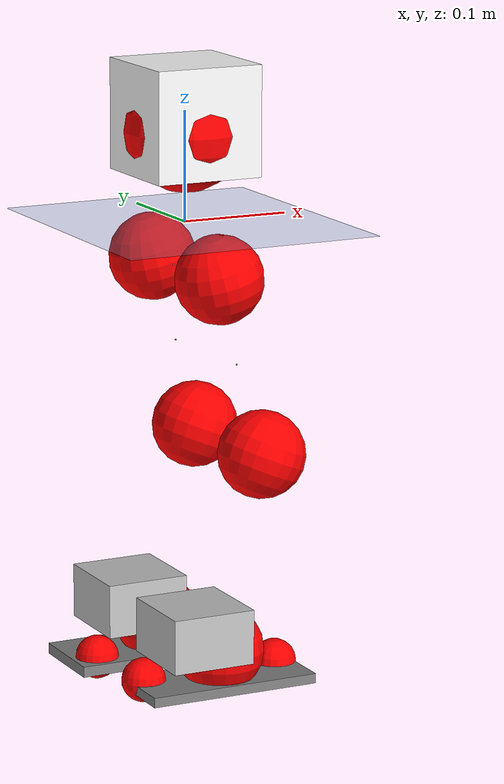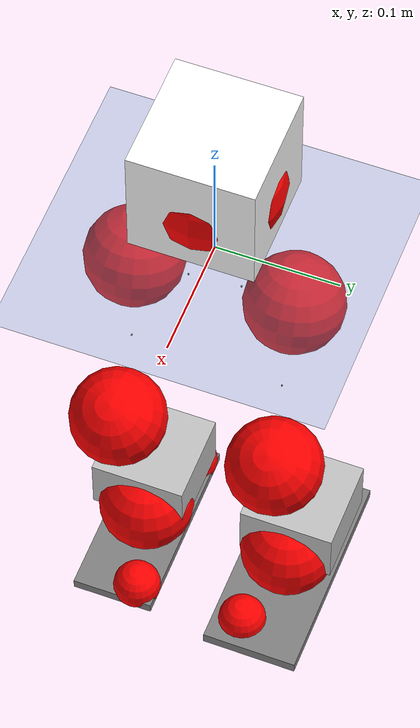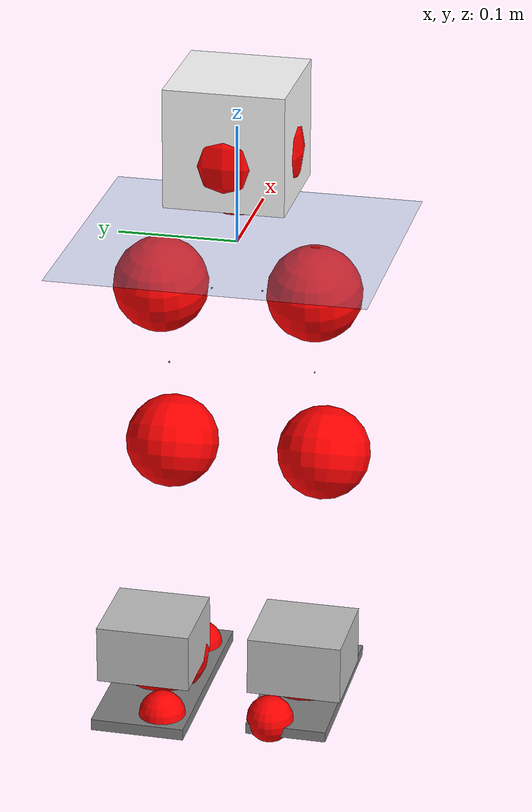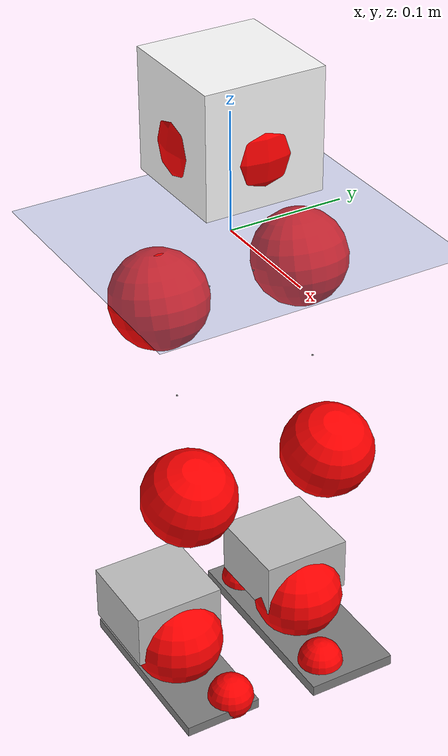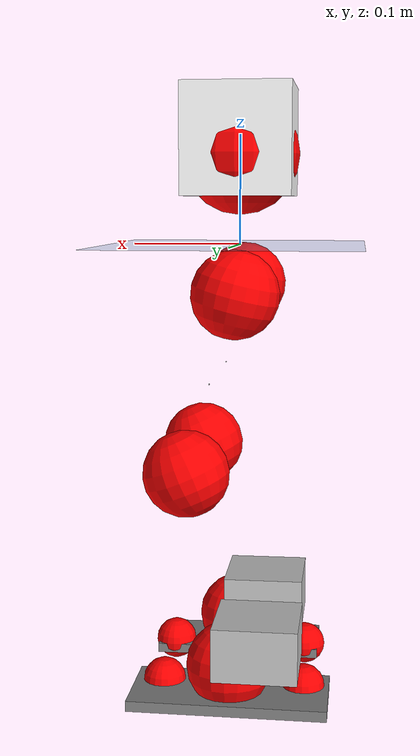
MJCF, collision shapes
<mujoco model="pi_12dof_release_v1">
  <compiler angle="radian" assetdir="assets" balanceinertia="true" inertiafromgeom="false"/>

  <option timestep="0.005" density="1.2" viscosity="2e-05"/>

  <size nkey="1"/>

  <visual>
    <quality shadowsize="8192"/>
    <map shadowclip="0.5"/>
  </visual>

  <default>
    <default class="/">
      <joint armature="0.01" damping="0.01" frictionloss="0.01"/>
      <geom contype="0" conaffinity="0" group="1" solref="-1000 -80"/>
      <site size="0.01 0.005 0.005" group="5"/>
      <general forcelimited="true" biastype="affine" gainprm="20" biasprm="0 -20 -0.5"/>
      <default class="foot">
        <geom size="0.0845 0.036 0.005" type="box" condim="6" group="4" priority="1" friction="0.9 0.2 0.2" solimp="0.015 1 0.005"/>
      </default>
      <default class="reward_collision_sphere">
        <geom group="5" rgba="1 0 0 1"/>
      </default>
    </default>
  </default>

  <asset>
    <texture type="skybox" colorspace="auto" name="//unnamed_texture_0" builtin="gradient" rgb1="0.95 0.95 0.95" rgb2="0.95 0.95 0.95" width="100" height="600"/>
    <texture type="2d" colorspace="auto" name="texplane" builtin="checker" rgb1="0.345 0.575 0.748" rgb2="0.345 0.575 0.748" markrgb="1 1 1" width="512" height="512"/>
    <material name="MatPlane" class="/" texture="texplane" texuniform="true" texrepeat="2 2" specular="0.9"/>
    <mesh name="baselink_1" class="/" file="baselink_1.STL"/>
    <mesh name="r_hip_pitch_link" class="/" file="r_hip_pitch_link.STL"/>
    <mesh name="r_hip_roll_link" class="/" file="r_hip_roll_link.STL"/>
    <mesh name="r_thigh_link" class="/" file="r_thigh_link.STL"/>
    <mesh name="r_calf_link" class="/" file="r_calf_link.STL"/>
    <mesh name="r_ankle_pitch_link" class="/" file="r_ankle_pitch_link.STL"/>
    <mesh name="r_ankle_roll_link" class="/" file="r_ankle_roll_link.STL"/>
    <mesh name="l_hip_pitch_link" class="/" file="l_hip_pitch_link.STL"/>
    <mesh name="l_hip_roll_link" class="/" file="l_hip_roll_link.STL"/>
    <mesh name="l_thigh_link" class="/" file="l_thigh_link.STL"/>
    <mesh name="l_calf_link" class="/" file="l_calf_link.STL"/>
    <mesh name="l_ankle_pitch_link" class="/" file="l_ankle_pitch_link.STL"/>
    <mesh name="l_ankle_roll_link" class="/" file="l_ankle_roll_link.STL"/>
  </asset>

  <worldbody>
    <geom name="floor" class="/" size="100 100 0.125" type="plane" group="0" material="MatPlane"/>
    <light name="toplight_shadow" class="/" pos="0 0 5" dir="0.0990148 0.0990148 -0.990148" type="directional" ambient="0.04 0.04 0.04" diffuse="0.55 0.55 0.55" specular="0.12 0.12 0.12"/>
    <light name="toplight_fill" class="/" pos="0 0 5" dir="0.0990148 0.0990148 -0.990148" type="directional" castshadow="false" ambient="0.04 0.04 0.04" diffuse="0.3 0.3 0.3" specular="0.08 0.08 0.08"/>
    <body name="trunk" pos="0.00020196 -0.000141055 -0.00283642" quat="1 2.26232e-05 5.81473e-05 -6.13122e-05">
      <inertial pos="0.00126332 0.0020315 0.0517027" quat="0.695228 0.00903817 0.00973899 0.718666" mass="2.10167" diaginertia="0.00890169 0.00300556 0.0108017"/>
      <joint name="//unnamed_joint_0" type="free"/>
      <geom name="//unnamed_geom_1" class="/" type="mesh" density="0" rgba="1 1 1 1" mesh="baselink_1"/>
      <geom name="//unnamed_geom_2" class="/" size="0.0500967 0.0500967 0.0500967" pos="0 0 0.0972585" type="box" rgba="1 1 1 1"/>
      <geom name="//unnamed_geom_3" class="reward_collision_sphere" size="0.0551063" pos="0 0 0.0851012"/>
      <site name="imu" class="/" pos="0.00553711 -0.0123952 0.00683029" size="0.0100193"/>
      <camera name="track" class="/" pos="0 -1.6186 0" quat="0.707107 0.707107 0 0" mode="trackcom"/>
      <camera name="ego_camera" class="/" pos="0.0735579 0 0.218832" quat="-0.5 -0.5 0.5 0.5"/>
      <body name="r_hip_pitch_link" pos="0.00190835 -0.0208594 -0.0397781" quat="0.992189 0.000316266 -0.124743 -6.63328e-05">
        <inertial pos="-0.00163845 -0.0441537 -0.00228258" quat="-0.0156801 0.70487 -0.0311768 0.708478" mass="0.36847" diaginertia="9.79022e-05 3.27891e-05 0.000226084"/>
        <joint name="r_hip_pitch_joint" class="/" pos="0 0 0" axis="0.00744947 -0.999972 0.000926036" stiffness="0.0120009" range="-1.72905 1.19277" armature="0.00872369" damping="0.00213772" frictionloss="0.00860625"/>
        <geom name="//unnamed_geom_4" class="/" type="mesh" density="0" rgba="0.75294 0.75294 0.75294 1" mesh="r_hip_pitch_link"/>
        <geom name="//unnamed_geom_5" class="/" size="0.000500967 0.000500967 0.000500967" type="box" rgba="0.75294 0.75294 0.75294 1"/>
        <body name="r_hip_roll_link" pos="8.75588e-05 -0.0442021 0.00228211" quat="1 -5.6967e-05 -0.000101839 4.58487e-05">
          <inertial pos="-0.00129188 0.000873726 -0.0769284" quat="0.706627 -0.0789145 -0.0805135 0.698548" mass="0.379393" diaginertia="0.00030185 9.69038e-05 0.000323915"/>
          <joint name="r_hip_roll_joint" class="/" pos="0 0 0" axis="-0.999918 0.00975043 0.00833388" range="-0.121492 0.51783" armature="0.0104259" damping="0.0186618" frictionloss="0.0112986"/>
          <geom name="//unnamed_geom_6" class="/" type="mesh" density="0" rgba="0.75294 0.75294 0.75294 1" mesh="r_hip_roll_link"/>
          <geom name="//unnamed_geom_7" class="/" size="0.000500967 0.000500967 0.000500967" type="box" rgba="0.75294 0.75294 0.75294 1"/>
          <geom name="//unnamed_geom_8" class="reward_collision_sphere" size="0.0400773"/>
          <body name="r_thigh_link" pos="-0.00127542 0.00332471 -0.0815575" quat="0.999999 0.000759407 0.000764646 -0.000384271">
            <inertial pos="-0.000143443 0.000734034 -0.0577238" quat="0.736813 0.676097 0.000234058 0.000604359" mass="0.107604" diaginertia="0.000113233 3.25202e-05 0.000146774"/>
            <joint name="r_thigh_joint" class="/" pos="0 0 0" axis="-0.0016787 0.00336885 -0.999993" range="-0.306571 0.540754" armature="0.0113503" damping="0.00604918" frictionloss="0.0102106"/>
            <geom name="//unnamed_geom_9" class="/" type="mesh" density="0" rgba="0.75294 0.75294 0.75294 1" mesh="r_thigh_link"/>
            <geom name="//unnamed_geom_10" class="/" size="0.000500967 0.000500967 0.000500967" type="box" rgba="0.75294 0.75294 0.75294 1"/>
            <body name="r_calf_link" pos="0.0020717 -0.00411681 -0.0868849" quat="0.947346 -0.000979934 0.320211 -0.000126435">
              <inertial pos="0.000133588 -0.00109753 -0.0843011" quat="0.999979 -0.00543159 0.000188097 0.00366547" mass="0.800795" diaginertia="0.00313404 0.00114592 0.000462909"/>
              <joint name="r_calf_joint" class="/" pos="0 0 0" axis="0.00856277 -0.999946 0.00592118" stiffness="0.0113734" range="-1.68723 0.644037" armature="0.00973434" damping="0.00833446" frictionloss="0.00977552"/>
              <geom name="//unnamed_geom_11" class="/" type="mesh" density="0" rgba="0.75294 0.75294 0.75294 1" mesh="r_calf_link"/>
              <geom name="//unnamed_geom_12" class="/" size="0.000500967 0.000500967 0.000500967" type="box" rgba="0.75294 0.75294 0.75294 1"/>
              <geom name="//unnamed_geom_13" class="reward_collision_sphere" size="0.0400773"/>
              <body name="r_ankle_pitch_link" pos="0.00185113 0.00302802 -0.169759" quat="0.980039 -0.000214881 -0.198804 -0.000187938">
                <inertial pos="0.00520011 0.00384724 -9.31538e-05" quat="0.00432907 0.706871 -0.00260986 0.707324" mass="0.175131" diaginertia="0.000276438 7.6603e-05 0.00032186"/>
                <joint name="r_ankle_pitch_joint" class="/" pos="0 0 0" axis="-0.00821139 -0.999964 -0.00212362" range="-1.35236 0.539268" armature="0.0100575" damping="0.0212131" frictionloss="0.0113313"/>
                <geom name="//unnamed_geom_14" class="/" type="mesh" density="0" rgba="0.75294 0.75294 0.75294 1" mesh="r_ankle_pitch_link"/>
                <geom name="//unnamed_geom_15" class="/" size="0.0390754 0.0400773 0.0250483" type="box" rgba="0.75294 0.75294 0.75294 1"/>
                <body name="r_ankle_roll_link" pos="0.0761268 0.00331348 0.00251414" quat="1 0.000273852 0.000103847 0.000196751">
                  <inertial pos="-0.0249386 0.000235624 -0.0158718" quat="0.561998 0.430682 0.433431 0.557502" mass="0.516575" diaginertia="0.00106562 0.000359771 0.000755487"/>
                  <joint name="r_ankle_roll_joint" class="/" pos="0 0 0" axis="-1 -0.000607713 0.000743304" range="-0.170673 0.166256" armature="0.010017" damping="0.00860933" frictionloss="0.0107718"/>
                  <geom name="//unnamed_geom_16" class="/" type="mesh" density="0" rgba="0.75294 0.75294 0.75294 1" mesh="r_ankle_roll_link"/>
                  <geom name="//unnamed_geom_17" class="/" type="mesh" rgba="0.75294 0.75294 0.75294 1" mesh="r_ankle_roll_link"/>
                  <geom name="right_foot" class="foot" size="0.0807999 0.034378 0.00451235" pos="-0.0500193 0 -0.0534922"/>
                  <geom name="//unnamed_geom_19" class="reward_collision_sphere" size="0.0400773" pos="-0.0490386 0 -0.0243146"/>
                  <geom name="//unnamed_geom_20" class="reward_collision_sphere" size="0.0200387" pos="0.0147116 0.016186 -0.0486293"/>
                  <geom name="//unnamed_geom_21" class="reward_collision_sphere" size="0.0200387" pos="-0.117693 0.016186 -0.0486293"/>
                  <site name="right_foot" class="foot" pos="-0.0500193 0 -0.0534922" size="0.0100193"/>
                </body>
              </body>
            </body>
          </body>
        </body>
      </body>
      <body name="l_hip_pitch_link" pos="-0.00159636 0.021152 -0.039672" quat="0.992173 0.000105658 -0.124872 -0.000196281">
        <inertial pos="-0.00129748 0.0410377 -0.000659272" quat="-0.0432221 0.706878 0.0294027 0.705401" mass="0.385808" diaginertia="0.00011789 3.7725e-05 0.000260851"/>
        <joint name="l_hip_pitch_joint" class="/" pos="0 0 0" axis="-0.00543779 0.999985 -6.97698e-05" range="-1.19371 1.70574" armature="0.011426" damping="0.023641" frictionloss="0.0086861"/>
        <geom name="//unnamed_geom_22" class="/" type="mesh" density="0" rgba="0.75294 0.75294 0.75294 1" mesh="l_hip_pitch_link"/>
        <geom name="//unnamed_geom_23" class="/" size="0.000500967 0.000500967 0.000500967" type="box" rgba="0.75294 0.75294 0.75294 1"/>
        <body name="l_hip_roll_link" pos="-0.000221814 0.0430744 0.000260014" quat="0.999999 -0.00065224 -0.000423549 -0.000685256">
          <inertial pos="-0.0011191 -0.00293435 -0.0748524" quat="0.69497 -0.0799505 -0.0770545 0.710414" mass="0.387562" diaginertia="0.000313108 9.58612e-05 0.000360064"/>
          <joint name="l_hip_roll_joint" class="/" pos="0 0 0" axis="-0.999973 0.006019 0.00414667" range="-0.47354 0.0767662" armature="0.0100905" damping="0.0102928" frictionloss="0.00949376"/>
          <geom name="//unnamed_geom_24" class="/" type="mesh" density="0" rgba="0.75294 0.75294 0.75294 1" mesh="l_hip_roll_link"/>
          <geom name="//unnamed_geom_25" class="/" size="0.000500967 0.000500967 0.000500967" type="box" rgba="0.75294 0.75294 0.75294 1"/>
          <geom name="//unnamed_geom_26" class="reward_collision_sphere" size="0.0400773"/>
          <body name="l_thigh_link" pos="0.00255423 -0.000531463 -0.0838425" quat="0.999999 -0.0012375 0.000565164 0.00033211">
            <inertial pos="0.00295044 -0.00269258 -0.0604719" quat="0.675516 0.737345 0.000156599 0.000429585" mass="0.111266" diaginertia="0.000113718 3.42276e-05 0.000157769"/>
            <joint name="l_thigh_joint" class="/" pos="0 0 0" axis="0.000281956 -0.000206694 -1" range="-0.595951 0.248346" armature="0.00916336" damping="0.0206928" frictionloss="0.00859662"/>
            <geom name="//unnamed_geom_27" class="/" type="mesh" density="0" rgba="0.75294 0.75294 0.75294 1" mesh="l_thigh_link"/>
            <geom name="//unnamed_geom_28" class="/" size="0.000500967 0.000500967 0.000500967" type="box" rgba="0.75294 0.75294 0.75294 1"/>
            <body name="l_calf_link" pos="-2.13733e-05 0.00324713 -0.0850437" quat="0.947913 0.000824751 0.318527 -0.000683034">
              <inertial pos="-0.000377534 0.00459188 -0.0873487" quat="0.999984 0.00446614 0.00326464 -0.00112866" mass="0.786682" diaginertia="0.00318892 0.00114005 0.000449076"/>
              <joint name="l_calf_joint" class="/" pos="0 0 0" axis="0.00665535 0.999978 0.000646191" stiffness="0.00883972" range="-0.652067 1.60935" armature="0.00990267" damping="0.00825313" frictionloss="0.0086398"/>
              <geom name="//unnamed_geom_29" class="/" type="mesh" density="0" rgba="0.75294 0.75294 0.75294 1" mesh="l_calf_link"/>
              <geom name="//unnamed_geom_30" class="/" size="0.000500967 0.000500967 0.000500967" type="box" rgba="0.75294 0.75294 0.75294 1"/>
              <geom name="//unnamed_geom_31" class="reward_collision_sphere" size="0.0400773"/>
              <body name="l_ankle_pitch_link" pos="6.03751e-05 0.00137998 -0.171345" quat="0.980034 6.70595e-05 -0.198828 0.000450348">
                <inertial pos="0.00481833 0.000465116 0.00243395" quat="-0.000518243 0.715351 -0.00502639 0.698747" mass="0.174115" diaginertia="0.000277324 7.56974e-05 0.000317291"/>
                <joint name="l_ankle_pitch_joint" class="/" pos="0 0 0" axis="-0.00552673 0.999939 -0.00960636" stiffness="0.00193913" range="-0.509931 1.31189" armature="0.0101358" damping="0.00119445" frictionloss="0.0100779"/>
                <geom name="//unnamed_geom_32" class="/" type="mesh" density="0" rgba="0.75294 0.75294 0.75294 1" mesh="l_ankle_pitch_link"/>
                <geom name="//unnamed_geom_33" class="/" size="0.0390754 0.0400773 0.0250483" type="box" rgba="0.75294 0.75294 0.75294 1"/>
                <body name="l_ankle_roll_link" pos="0.0758385 -0.00177303 0.000525781" quat="0.999999 6.3315e-05 -4.50152e-06 -0.00141211">
                  <inertial pos="-0.0223884 0.000157475 -0.0176512" quat="0.560398 0.429992 0.441415 0.553366" mass="0.492225" diaginertia="0.000990812 0.000344862 0.000741957"/>
                  <joint name="l_ankle_roll_joint" class="/" pos="0 0 0" axis="-0.999981 -0.00261569 0.00558607" range="-0.156258 0.130516" armature="0.00977932" damping="0.00466908" frictionloss="0.00934838"/>
                  <geom name="//unnamed_geom_34" class="/" type="mesh" density="0" rgba="0.75294 0.75294 0.75294 1" mesh="l_ankle_roll_link"/>
                  <geom name="//unnamed_geom_35" class="/" type="mesh" rgba="0.75294 0.75294 0.75294 1" mesh="l_ankle_roll_link"/>
                  <geom name="left_foot" class="foot" size="0.0918837 0.0402004 0.00496273" pos="-0.0500193 0 -0.0534922"/>
                  <geom name="//unnamed_geom_37" class="reward_collision_sphere" size="0.0400773" pos="-0.0490386 0 -0.0243146"/>
                  <geom name="//unnamed_geom_38" class="reward_collision_sphere" size="0.0200387" pos="0.0147116 -0.016186 -0.0486293"/>
                  <geom name="//unnamed_geom_39" class="reward_collision_sphere" size="0.0200387" pos="-0.117693 -0.016186 -0.0486293"/>
                  <site name="left_foot" class="foot" pos="-0.0500193 0 -0.0534922" size="0.0100193"/>
                </body>
              </body>
            </body>
          </body>
        </body>
      </body>
    </body>
  </worldbody>

  <contact>
    <pair class="/" geom1="floor" geom2="right_foot" name="//unnamed_contact_1"/>
    <pair class="/" geom1="floor" geom2="left_foot" name="//unnamed_contact_0"/>
  </contact>

  <actuator>
    <general name="r_hip_pitch_joint" class="/" joint="r_hip_pitch_joint" forcerange="-18.8532 18.8532" gainprm="19.296" biasprm="0 -19.296 -0.507271"/>
    <general name="r_hip_roll_joint" class="/" joint="r_hip_roll_joint" forcerange="-20.8143 20.8143" gainprm="19.296" biasprm="0 -19.296 -0.507271"/>
    <general name="r_thigh_joint" class="/" joint="r_thigh_joint" forcerange="-18.9746 18.9746" gainprm="19.296" biasprm="0 -19.296 -0.507271"/>
    <general name="r_calf_joint" class="/" joint="r_calf_joint" forcerange="-21.8063 21.8063" gainprm="19.296" biasprm="0 -19.296 -0.507271"/>
    <general name="r_ankle_pitch_joint" class="/" joint="r_ankle_pitch_joint" forcerange="-23.2038 23.2038" gainprm="19.296" biasprm="0 -19.296 -0.507271"/>
    <general name="r_ankle_roll_joint" class="/" joint="r_ankle_roll_joint" forcerange="-22.8778 22.8778" gainprm="19.296" biasprm="0 -19.296 -0.507271"/>
    <general name="l_hip_pitch_joint" class="/" joint="l_hip_pitch_joint" forcerange="-19.0956 19.0956" gainprm="19.296" biasprm="0 -19.296 -0.507271"/>
    <general name="l_hip_roll_joint" class="/" joint="l_hip_roll_joint" forcerange="-19.9336 19.9336" gainprm="19.296" biasprm="0 -19.296 -0.507271"/>
    <general name="l_thigh_joint" class="/" joint="l_thigh_joint" forcerange="-21.1693 21.1693" gainprm="19.296" biasprm="0 -19.296 -0.507271"/>
    <general name="l_calf_joint" class="/" joint="l_calf_joint" forcerange="-20.5361 20.5361" gainprm="19.296" biasprm="0 -19.296 -0.507271"/>
    <general name="l_ankle_pitch_joint" class="/" joint="l_ankle_pitch_joint" forcerange="-21.8534 21.8534" gainprm="19.296" biasprm="0 -19.296 -0.507271"/>
    <general name="l_ankle_roll_joint" class="/" joint="l_ankle_roll_joint" forcerange="-19.4052 19.4052" gainprm="19.296" biasprm="0 -19.296 -0.507271"/>
  </actuator>

  <sensor>
    <gyro site="imu" name="imu_angular_velocity"/>
    <velocimeter site="imu" name="imu_linear_velocity"/>
    <framelinvel objtype="site" objname="left_foot" name="left_foot_global_linear_velocity"/>
    <framelinvel objtype="site" objname="right_foot" name="right_foot_global_linear_velocity"/>
  </sensor>

  <keyframe>
    <key name="home" qpos="0 0 0.291 1 0 0 0 0.4 0 0 -0.8 0.4 0 -0.4 0 0 0.8 -0.4 0"/>
  </keyframe>
</mujoco>
